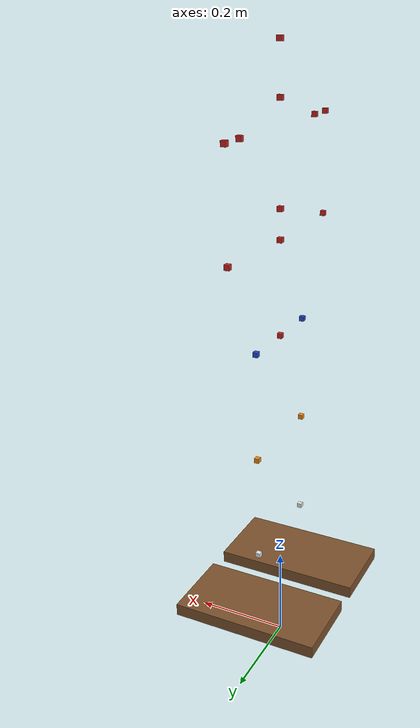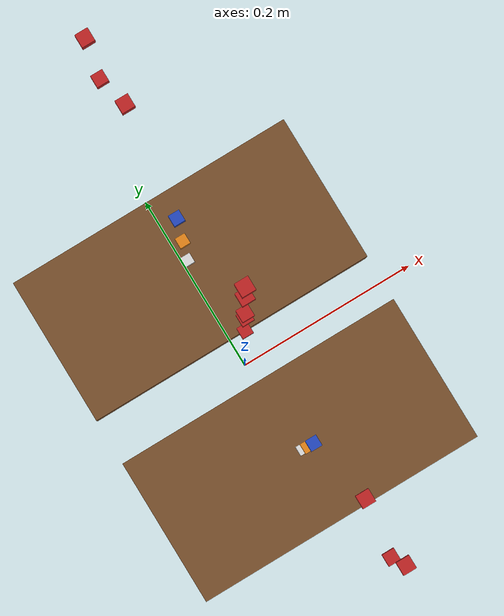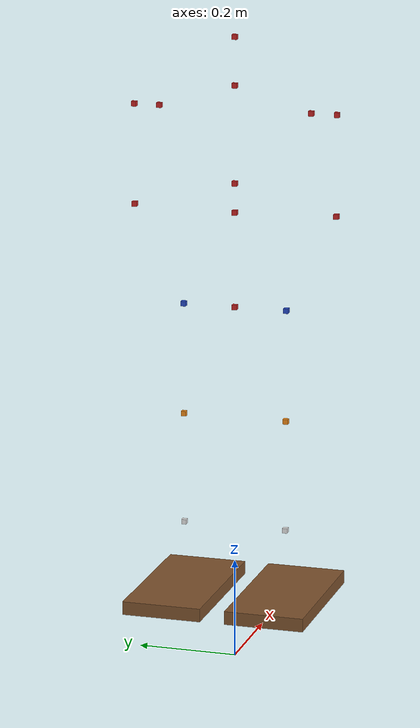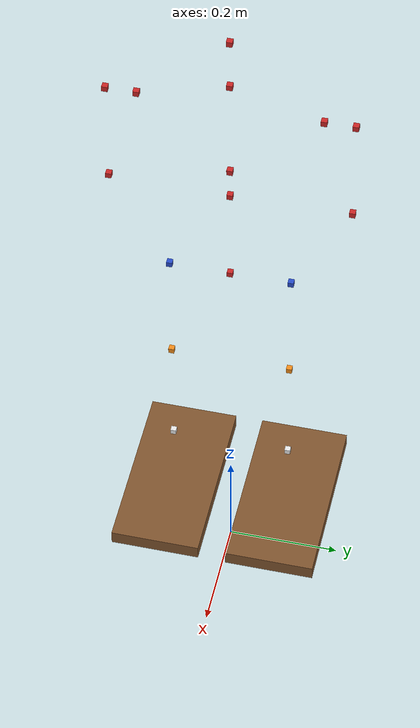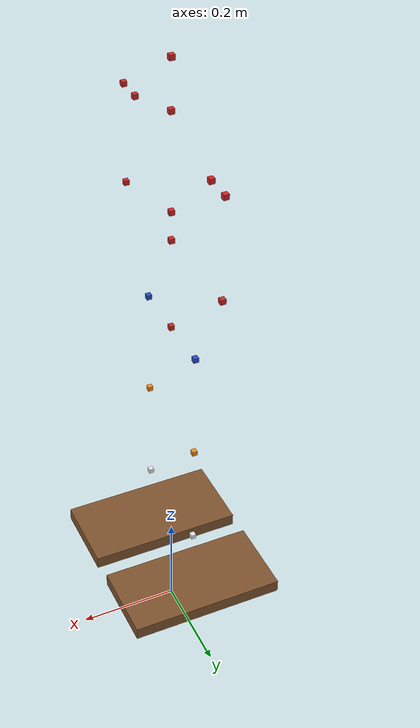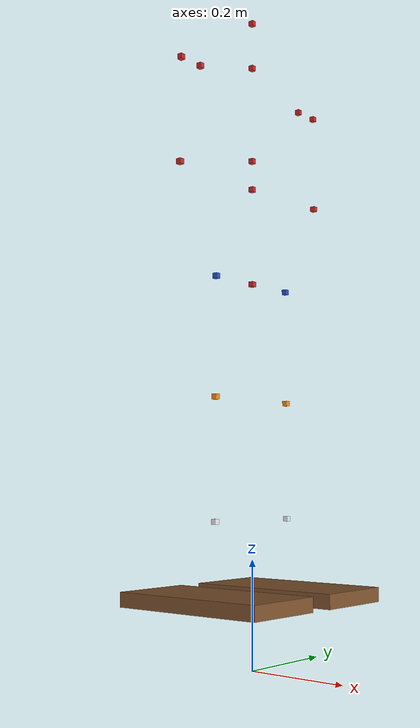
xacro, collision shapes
<?xml version="1.0"?>

<robot name="soccer_simulation" xmlns:xacro="http://www.ros.org/wiki/xacro">

  <xacro:property name="pi" value="3.141592654" />
   <!-- Import all Gazebo-customization elements, including Gazebo colors -->
  <xacro:include filename="$(find diana_description)/urdf/soccer_gazebo.gazebo" />
  <xacro:include filename="$(find diana_description)/urdf/materials.xacro" />

  <!-- Used for fixing robot -->
  <link name="world">
  </link>

  <joint name="world_fixed" type="fixed">
    <origin xyz="0 0 0" rpy="0 0 0"/>
    <parent link="world"/>
    <child link="base"/>
  </joint>

  <link name="base">
  </link>

  <joint name="base_fixed" type="fixed">
    <origin xyz="0 0 0.723" rpy="0 0 0"/>
    <parent link="base"/>
    <child link="pelvis"/>
  </joint>

  <!-- pelvis -->

  <link name="pelvis">
    <collision>
      <origin xyz="0 0 0" rpy="0 0 0"/>
      <geometry>
        <box size="0.01 0.01 0.01" />
      </geometry>
    </collision>

    <visual>
        <origin xyz="0 0 0" rpy="0 0 0"/>
        <geometry>
          <mesh filename="package://diana_description/meshes/stl_robot_pelvis_main.stl" scale="0.001 0.001 0.001"/>
        </geometry>
        <material name="red"/>
    </visual>

    <inertial>
      <origin xyz="0 0 0" rpy="0 0 0"/>
      <mass value="1"/>
      <inertia ixx="1.0" ixy="0.0" ixz="0.0" iyy="1.0" iyz="0.0" izz="1.0" />
    </inertial>
  </link>

  <joint name="imu_fixed" type="fixed">
    <parent link="pelvis"/>
    <child link="imu_link"/>
    <origin xyz="0.0 0.0 0" rpy="0 0 0"/>
  </joint>

  <link name="imu_link">
    <inertial>
      <origin xyz="0 0 0" rpy="0 0 0"/>
      <mass value="1"/>
      <inertia ixx="1.0" ixy="0.0" ixz="0.0" iyy="1.0" iyz="0.0" izz="1.0" />
    </inertial>
  </link>

  <!-- chest -->
  <joint name="waist_fixed" type="fixed">
    <parent link="pelvis"/>
    <child link="waist_fixed_link"/>
    <origin xyz="0 0 0" rpy="0 0 0"/>
  </joint>

  <link name="waist_fixed_link">
    <collision>
      <origin xyz="0 0 0" rpy="0 0 0"/>
      <geometry>
        <box size="0.01 0.01 0.01" />
      </geometry>
    </collision>

    <visual>
        <origin xyz="0 0 0" rpy="0 0 0"/>
        <geometry>
          <mesh filename="package://diana_description/meshes/stl_robot_chest_1.stl" scale="0.001 0.001 0.001"/>
        </geometry>
        <material name="red"/>
    </visual>

    <inertial>
      <origin xyz="0 0 0" rpy="0 0 0"/>
      <mass value="1"/>
      <inertia ixx="1.0" ixy="0.0" ixz="0.0" iyy="1.0" iyz="0.0" izz="1.0" />
    </inertial>
  </link>

  <joint name="waist_roll" type="revolute">
    <parent link="waist_fixed_link"/>
    <child link="waist_roll_link"/>
    <origin xyz="0 0 0.19" rpy="0 0 0"/>
    <axis xyz="-1 0 0"/>
    <limit velocity="6.5" effort="1000" lower="${-pi/2}" upper="${pi}" />
    <dynamics damping = "0.7"/>
  </joint>

  <transmission name="waist_roll_tran">
     <type>transmission_interface/SimpleTransmission</type>
     <joint name="waist_roll">
       <hardwareInterface>EffortJointInterface</hardwareInterface>
     </joint>
     <actuator name="waist_roll_motor">
       <hardwareInterface>EffortJointInterface</hardwareInterface>
       <mechanicalReduction>1</mechanicalReduction>
     </actuator>
  </transmission>

  <link name="waist_roll_link">
    <collision>
      <origin xyz="0 0 0" rpy="0 0 0"/>
      <geometry>
        <box size="0.01 0.01 0.01" />
      </geometry>
    </collision>

    <visual>
        <origin xyz="0 0 0" rpy="0 0 0"/>
        <geometry>
          <mesh filename="package://diana_description/meshes/stl_robot_chest_2.stl" scale="0.001 0.001 0.001"/>
        </geometry>
        <material name="red"/>
    </visual>

    <inertial>
      <origin xyz="0 0 0" rpy="0 0 0"/>
      <mass value="1"/>
      <inertia ixx="1.0" ixy="0.0" ixz="0.0" iyy="1.0" iyz="0.0" izz="1.0" />
    </inertial>
  </link>

  <joint name="waist_yaw" type="revolute">
    <parent link="waist_roll_link"/>
    <child link="waist_yaw_link"/>
    <origin xyz="0 0 0.058" rpy="0 0 0"/>
    <axis xyz="0 0 -1"/>
    <limit velocity="6.5" effort="1000" lower="${-pi/2}" upper="${pi}" />
    <dynamics damping = "0.7"/>
   </joint>

  <transmission name="waist_yaw_tran">
     <type>transmission_interface/SimpleTransmission</type>
     <joint name="waist_yaw">
       <hardwareInterface>EffortJointInterface</hardwareInterface>
     </joint>
     <actuator name="waist_yaw_motor">
       <hardwareInterface>EffortJointInterface</hardwareInterface>
       <mechanicalReduction>1</mechanicalReduction>
     </actuator>
  </transmission>

  <link name="waist_yaw_link">
    <collision>
      <origin xyz="0 0 0" rpy="0 0 0"/>
      <geometry>
        <box size="0.01 0.01 0.01" />
      </geometry>
    </collision>

    <visual>
        <origin xyz="0 0 0" rpy="0 0 0"/>
        <geometry>
          <mesh filename="package://diana_description/meshes/stl_robot_chest_3.stl" scale="0.001 0.001 0.001"/>
        </geometry>
        <material name="red"/>
    </visual>

    <inertial>
      <origin xyz="0 0 0" rpy="0 0 0"/>
      <mass value="1"/>
      <inertia ixx="1.0" ixy="0.0" ixz="0.0" iyy="1.0" iyz="0.0" izz="1.0" />
    </inertial>
  </link>

  <!-- head -->
  <joint name="head_yaw" type="revolute">
    <parent link="waist_yaw_link"/>
    <child link="head_yaw_link"/>
    <origin xyz="0 0 0.1935" rpy="0 0 0"/>
    <axis xyz="0 0 -1"/>
    <limit velocity="6.5" effort="1000" lower="${-pi/2}" upper="${pi/2}" />
    <dynamics damping = "0.7"/>
  </joint>

  <transmission name="head_yaw_tran">
     <type>transmission_interface/SimpleTransmission</type>
     <joint name="head_yaw">
       <hardwareInterface>EffortJointInterface</hardwareInterface>
     </joint>
     <actuator name="head_yaw_motor">
       <hardwareInterface>EffortJointInterface</hardwareInterface>
       <mechanicalReduction>1</mechanicalReduction>
     </actuator>
  </transmission>

  <link name="head_yaw_link">
    <collision>
      <origin xyz="0 0 0" rpy="0 0 0"/>
      <geometry>
        <box size="0.01 0.01 0.01" />
      </geometry>
    </collision>

    <visual>
        <origin xyz="0 0 0" rpy="0 0 0"/>
        <geometry>
          <mesh filename="package://diana_description/meshes/stl_robot_head1.stl" scale="0.001 0.001 0.001"/>
        </geometry>
        <material name="red"/>
    </visual>

    <inertial>
      <origin xyz="0 0 0" rpy="0 0 0"/>
      <mass value="1"/>
      <inertia ixx="1.0" ixy="0.0" ixz="0.0" iyy="1.0" iyz="0.0" izz="1.0" />
    </inertial>
  </link>

  <joint name="head_pitch" type="revolute">
    <parent link="head_yaw_link"/>
    <child link="head_pitch_link"/>
    <origin xyz="0 0 0.095" rpy="0 0 0"/>
    <axis xyz="0 -1 0"/>
    <limit velocity="6.5" effort="1000" lower="${-pi/2}" upper="${pi/2}" />
    <dynamics damping = "0.7"/>
  </joint>

  <transmission name="head_pitch_tran">
     <type>transmission_interface/SimpleTransmission</type>
     <joint name="head_pitch">
       <hardwareInterface>EffortJointInterface</hardwareInterface>
     </joint>
     <actuator name="head_pitch_motor">
       <hardwareInterface>EffortJointInterface</hardwareInterface>
       <mechanicalReduction>1</mechanicalReduction>
     </actuator>
   </transmission>

  <link name="head_pitch_link">
    <collision>
      <origin xyz="0 0 0" rpy="0 0 0"/>
      <geometry>
        <box size="0.01 0.01 0.01" />
      </geometry>
    </collision>

    <visual>
        <origin xyz="0 0 0" rpy="0 0 0"/>
        <geometry>
          <mesh filename="package://diana_description/meshes/stl_robot_head2.stl" scale="0.001 0.001 0.001"/>
        </geometry>
        <material name="red"/>
    </visual>

    <inertial>
      <origin xyz="0 0 0" rpy="0 0 0"/>
      <mass value="1"/>
      <inertia ixx="1.0" ixy="0.0" ixz="0.0" iyy="1.0" iyz="0.0" izz="1.0" />
    </inertial>
  </link>

  <joint name="head_roll" type="revolute">
    <parent link="head_pitch_link"/>
    <child link="head_roll_link"/>
    <origin xyz="0 0 0" rpy="0 0 0"/>
    <axis xyz="-1 0 0"/>
    <limit velocity="6.5" effort="1000" lower="${-pi/2}" upper="${pi/2}" />
    <dynamics damping = "0.7"/>
  </joint>

  <transmission name="head_roll_tran">
     <type>transmission_interface/SimpleTransmission</type>
     <joint name="head_roll">
       <hardwareInterface>EffortJointInterface</hardwareInterface>
     </joint>
     <actuator name="head_roll_motor">
       <hardwareInterface>EffortJointInterface</hardwareInterface>
       <mechanicalReduction>1</mechanicalReduction>
     </actuator>
  </transmission>

  <link name="head_roll_link">
    <collision>
      <origin xyz="0 0 0" rpy="0 0 0"/>
      <geometry>
        <box size="0.01 0.01 0.01" />
      </geometry>
    </collision>

    <visual>
        <origin xyz="0 0 0" rpy="0 0 0"/>
        <geometry>
          <mesh filename="package://diana_description/meshes/stl_robot_head3.stl" scale="0.001 0.001 0.001"/>
        </geometry>
        <material name="red"/>
    </visual>

    <inertial>
      <origin xyz="0 0 0" rpy="0 0 0"/>
      <mass value="1"/>
      <inertia ixx="1.0" ixy="0.0" ixz="0.0" iyy="1.0" iyz="0.0" izz="1.0" />
    </inertial>
  </link>

  <!-- left Arm -->
  <joint name="l_shoulder_pitch" type="revolute">
    <parent link="waist_yaw_link"/>
    <child link="l_shoulder_pitch_link"/>
    <origin xyz="0 0.1535 0.147" rpy="0 0 0"/>
    <axis xyz="0 -1 0"/>
    <limit velocity="6.5" effort="1000" lower="${-pi/2}" upper="${pi}" />
    <dynamics damping = "0.7"/>
  </joint>

  <transmission name="l_shoulder_pitch_tran">
     <type>transmission_interface/SimpleTransmission</type>
     <joint name="l_shoulder_pitch">
       <hardwareInterface>EffortJointInterface</hardwareInterface>
     </joint>
     <actuator name="l_shoulder_pitch_motor">
       <hardwareInterface>EffortJointInterface</hardwareInterface>
       <mechanicalReduction>1</mechanicalReduction>
     </actuator>
  </transmission>

  <link name="l_shoulder_pitch_link">
    <collision>
      <origin xyz="0 0 0" rpy="0 0 0"/>
      <geometry>
        <box size="0.01 0.01 0.01" />
      </geometry>
    </collision>

    <visual>
        <origin xyz="0 0 0" rpy="0 0 0"/>
        <geometry>
          <mesh filename="package://diana_description/meshes/stl_robot_arm_left1.stl" scale="0.001 0.001 0.001"/>
        </geometry>
        <material name="red"/>
    </visual>

    <inertial>
      <origin xyz="0 0 0" rpy="0 0 0"/>
      <mass value="1"/>
      <inertia ixx="1.0" ixy="0.0" ixz="0.0" iyy="1.0" iyz="0.0" izz="1.0" />
    </inertial>
  </link>

  <joint name="l_shoulder_roll" type="revolute">
    <parent link="l_shoulder_pitch_link"/>
    <child link="l_shoulder_roll_link"/>
    <origin xyz="0 0.0515 0" rpy="-1.570796327 0 0"/>
    <axis xyz="-1 0 0"/>
    <limit velocity="6.5" effort="1000" lower="${-pi/2}" upper="${pi}" />
    <dynamics damping = "0.7"/>
  </joint>

  <transmission name="l_shoulder_roll_tran">
     <type>transmission_interface/SimpleTransmission</type>
     <joint name="l_shoulder_roll">
       <hardwareInterface>EffortJointInterface</hardwareInterface>
     </joint>
     <actuator name="l_shoulder_roll_motor">
       <hardwareInterface>EffortJointInterface</hardwareInterface>
       <mechanicalReduction>1</mechanicalReduction>
     </actuator>
  </transmission>

  <link name="l_shoulder_roll_link">
    <collision>
      <origin xyz="0 0 0" rpy="0 0 0"/>
      <geometry>
        <box size="0.01 0.01 0.01" />
      </geometry>
    </collision>

    <visual>
        <origin xyz="0 0 0" rpy="0 0 0"/>
        <geometry>
          <mesh filename="package://diana_description/meshes/stl_robot_arm_left2.stl" scale="0.001 0.001 0.001"/>
        </geometry>
        <material name="red"/>
    </visual>

    <inertial>
      <origin xyz="0 0 0" rpy="0 0 0"/>
      <mass value="1"/>
      <inertia ixx="1.0" ixy="0.0" ixz="0.0" iyy="1.0" iyz="0.0" izz="1.0" />
    </inertial>
  </link>

  <joint name="l_elbow_pitch" type="revolute">
    <parent link="l_shoulder_roll_link"/>
    <child link="l_elbow_pitch_link"/>
    <origin xyz="0 0.2 0" rpy="0 0 0"/>
    <axis xyz="0 0 1"/>
    <limit velocity="6.5" effort="1000" lower="${-pi/2}" upper="${pi/2}" />
    <dynamics damping = "0.7"/>
  </joint>

  <transmission name="l_elbow_pitch_tran">
     <type>transmission_interface/SimpleTransmission</type>
     <joint name="l_elbow_pitch">
       <hardwareInterface>EffortJointInterface</hardwareInterface>
     </joint>
     <actuator name="l_elbow_pitch_motor">
       <hardwareInterface>EffortJointInterface</hardwareInterface>
       <mechanicalReduction>1</mechanicalReduction>
     </actuator>
  </transmission>

  <link name="l_elbow_pitch_link">
    <collision>
      <origin xyz="0 0 0" rpy="0 0 0"/>
      <geometry>
        <box size="0.01 0.01 0.01" />
      </geometry>
    </collision>

    <visual>
        <origin xyz="0 0 0" rpy="0 0 0"/>
        <geometry>
          <mesh filename="package://diana_description/meshes/stl_robot_arm_left3.stl" scale="0.001 0.001 0.001"/>
        </geometry>
        <material name="red"/>
    </visual>

    <inertial>
      <origin xyz="0 0 0" rpy="0 0 0"/>
      <mass value="1"/>
      <inertia ixx="1.0" ixy="0.0" ixz="0.0" iyy="1.0" iyz="0.0" izz="1.0" />
    </inertial>
  </link>

  <!-- right Arm -->
  <joint name="r_shoulder_pitch" type="revolute">
    <parent link="waist_yaw_link"/>
    <child link="r_shoulder_pitch_link"/>
    <origin xyz="0 -0.1535 0.147" rpy="0 0 0"/>
    <axis xyz="0 1 0"/>
    <limit velocity="6.5" effort="1000" lower="${-pi/2}" upper="${pi}" />
    <dynamics damping = "0.7"/>
  </joint>

  <transmission name="r_shoulder_pitch_tran">
     <type>transmission_interface/SimpleTransmission</type>
     <joint name="r_shoulder_pitch">
       <hardwareInterface>EffortJointInterface</hardwareInterface>
     </joint>
     <actuator name="r_shoulder_pitch_motor">
       <hardwareInterface>EffortJointInterface</hardwareInterface>
       <mechanicalReduction>1</mechanicalReduction>
     </actuator>
  </transmission>

  <link name="r_shoulder_pitch_link">
    <collision>
      <origin xyz="0 0 0" rpy="0 0 0"/>
      <geometry>
        <box size="0.01 0.01 0.01" />
      </geometry>
    </collision>

    <visual>
        <origin xyz="0 0 0" rpy="0 0 0"/>
        <geometry>
          <mesh filename="package://diana_description/meshes/stl_robot_arm_right1.stl" scale="0.001 0.001 0.001"/>
        </geometry>
        <material name="red"/>
    </visual>

    <inertial>
      <origin xyz="0 0 0" rpy="0 0 0"/>
      <mass value="1"/>
      <inertia ixx="1.0" ixy="0.0" ixz="0.0" iyy="1.0" iyz="0.0" izz="1.0" />
    </inertial>
  </link>

  <joint name="r_shoulder_roll" type="revolute">
    <parent link="r_shoulder_pitch_link"/>
    <child link="r_shoulder_roll_link"/>
    <origin xyz="0 -0.0515 0" rpy="1.570796327 0 0"/>
    <axis xyz="-1 0 0"/>
    <limit velocity="6.5" effort="1000" lower="${-pi/2}" upper="${pi}" />
    <dynamics damping = "0.7"/>
  </joint>

  <transmission name="r_shoulder_roll_tran">
     <type>transmission_interface/SimpleTransmission</type>
     <joint name="r_shoulder_roll">
       <hardwareInterface>EffortJointInterface</hardwareInterface>
     </joint>
     <actuator name="r_shoulder_roll_motor">
       <hardwareInterface>EffortJointInterface</hardwareInterface>
       <mechanicalReduction>1</mechanicalReduction>
     </actuator>
  </transmission>

  <link name="r_shoulder_roll_link">
    <collision>
      <origin xyz="0 0 0" rpy="0 0 0"/>
      <geometry>
        <box size="0.01 0.01 0.01" />
      </geometry>
    </collision>

    <visual>
        <origin xyz="0 0 0" rpy="0 0 0"/>
        <geometry>
          <mesh filename="package://diana_description/meshes/stl_robot_arm_right2.stl" scale="0.001 0.001 0.001"/>
        </geometry>
        <material name="red"/>
    </visual>

    <inertial>
      <origin xyz="0 0 0" rpy="0 0 0"/>
      <mass value="1"/>
      <inertia ixx="1.0" ixy="0.0" ixz="0.0" iyy="1.0" iyz="0.0" izz="1.0" />
    </inertial>
  </link>

  <joint name="r_elbow_pitch" type="revolute">
    <parent link="r_shoulder_roll_link"/>
    <child link="r_elbow_pitch_link"/>
    <origin xyz="0 -0.2 0" rpy="0 0 0"/>
    <axis xyz="0 0 1"/>
    <limit velocity="6.5" effort="1000" lower="${-pi/2}" upper="${pi/2}" />
    <dynamics damping = "0.7"/>
  </joint>

  <transmission name="r_elbow_pitch_tran">
     <type>transmission_interface/SimpleTransmission</type>
     <joint name="r_elbow_pitch">
       <hardwareInterface>EffortJointInterface</hardwareInterface>
     </joint>
     <actuator name="r_elbow_pitch_motor">
       <hardwareInterface>EffortJointInterface</hardwareInterface>
       <mechanicalReduction>1</mechanicalReduction>
     </actuator>
  </transmission>

  <link name="r_elbow_pitch_link">
    <collision>
      <origin xyz="0 0 0" rpy="0 0 0"/>
      <geometry>
        <box size="0.01 0.01 0.01" />
      </geometry>
    </collision>

    <visual>
        <origin xyz="0 0 0" rpy="0 0 0"/>
        <geometry>
          <mesh filename="package://diana_description/meshes/stl_robot_arm_right3.stl" scale="0.001 0.001 0.001"/>
        </geometry>
        <material name="red"/>
    </visual>

    <inertial>
      <origin xyz="0 0 0" rpy="0 0 0"/>
      <mass value="1"/>
      <inertia ixx="1.0" ixy="0.0" ixz="0.0" iyy="1.0" iyz="0.0" izz="1.0" />
    </inertial>
  </link>

  <!-- left leg -->
  <joint name="l_hip_pitch" type="revolute">
    <parent link="pelvis"/>
    <child link="l_hip_pitch_link"/>
    <origin xyz="0 0.105 0" rpy="0 0 0"/>
    <axis xyz="0 -1 0"/>
    <limit velocity="6.5" effort="1000" lower="${-pi/2}" upper="${pi/2}" />
    <dynamics damping = "0.7"/>
  </joint>

  <transmission name="l_hip_pitch_tran">
     <type>transmission_interface/SimpleTransmission</type>
     <joint name="l_hip_pitch">
       <hardwareInterface>EffortJointInterface</hardwareInterface>
     </joint>
     <actuator name="l_hip_pitch_motor">
       <hardwareInterface>EffortJointInterface</hardwareInterface>
       <mechanicalReduction>1</mechanicalReduction>
     </actuator>
  </transmission>

  <link name="l_hip_pitch_link">
    <collision>
      <origin xyz="0 0 0" rpy="0 0 0"/>
      <geometry>
        <box size="0.01 0.01 0.01" />
      </geometry>
    </collision>

    <visual>
      <origin xyz="0 0 0" rpy="0 0 0"/>
      <geometry>
        <mesh filename="package://diana_description/meshes/stl_robot_pelvis_left1.stl" scale="0.001 0.001 0.001"/>
      </geometry>
      <material name="blue"/>
    </visual>

    <inertial>
      <origin xyz="0 0 0" rpy="0 0 0"/>
      <mass value="1"/>
      <inertia ixx="1.0" ixy="0.0" ixz="0.0" iyy="1.0" iyz="0.0" izz="1.0" />
    </inertial>
  </link>

  <joint name="l_hip_roll" type="revolute">
    <parent link="l_hip_pitch_link"/>
    <child link="l_hip_roll_link"/>
    <origin xyz="0 0 0" rpy="0 0 0"/>
    <axis xyz="1 0 0"/>
    <limit velocity="6.5" effort="1000" lower="${-pi/2}" upper="${pi}" />
    <dynamics damping = "0.7"/>
  </joint>

  <transmission name="l_hip_roll_tran">
     <type>transmission_interface/SimpleTransmission</type>
     <joint name="l_hip_roll">
       <hardwareInterface>EffortJointInterface</hardwareInterface>
     </joint>
     <actuator name="l_hip_roll_motor">
       <hardwareInterface>EffortJointInterface</hardwareInterface>
       <mechanicalReduction>1</mechanicalReduction>
     </actuator>
  </transmission>

  <link name="l_hip_roll_link">
    <collision>
      <origin xyz="0 0 0" rpy="0 0 0"/>
      <geometry>
        <box size="0.01 0.01 0.01" />
      </geometry>
    </collision>

    <visual>
      <origin xyz="0 0 0" rpy="0 0 0"/>
      <geometry>
        <mesh filename="package://diana_description/meshes/stl_robot_pelvis_left2.stl" scale="0.001 0.001 0.001"/>
      </geometry>
      <material name="green"/>
    </visual>

    <inertial>
      <origin xyz="0 0 0" rpy="0 0 0"/>
      <mass value="1"/>
      <inertia ixx="1.0" ixy="0.0" ixz="0.0" iyy="1.0" iyz="0.0" izz="1.0" />
    </inertial>
  </link>

  <joint name="l_hip_yaw" type="revolute">
    <parent link="l_hip_roll_link"/>
    <child link="l_hip_yaw_link"/>
    <origin xyz="0 0 0" rpy="0 0 0"/>
    <axis xyz="0 0 1"/>
    <limit velocity="6.5" effort="1000" lower="${-pi/2}" upper="${pi/2}" />
    <dynamics damping = "0.7"/>
  </joint>

  <transmission name="l_hip_yaw_tran">
     <type>transmission_interface/SimpleTransmission</type>
     <joint name="l_hip_yaw">
       <hardwareInterface>EffortJointInterface</hardwareInterface>
     </joint>
     <actuator name="l_hip_yaw_motor">
       <hardwareInterface>EffortJointInterface</hardwareInterface>
       <mechanicalReduction>1</mechanicalReduction>
     </actuator>
  </transmission>

  <link name="l_hip_yaw_link">
    <collision>
      <origin xyz="0 0 0" rpy="0 0 0"/>
      <geometry>
        <box size="0.01 0.01 0.01" />
      </geometry>
    </collision>

    <visual>
      <origin xyz="0 0 0" rpy="0 0 0"/>
      <geometry>
        <mesh filename="package://diana_description/meshes/stl_robot_leg_left1.stl" scale="0.001 0.001 0.001"/>
      </geometry>
      <material name="grey"/>
    </visual>

    <inertial>
      <origin xyz="0 0 0" rpy="0 0 0"/>
      <mass value="1"/>
      <inertia ixx="1.0" ixy="0.0" ixz="0.0" iyy="1.0" iyz="0.0" izz="1.0" />
    </inertial>
  </link>

  <joint name="l_knee_pitch" type="revolute">
    <parent link="l_hip_yaw_link"/>
    <child link="l_knee_pitch_link"/>
    <origin xyz="0 0 -0.225" rpy="0 0 0"/>
    <axis xyz="0 1 0"/>
    <limit velocity="6.5" effort="1000" lower="${-pi}" upper="${pi/2}" />
    <dynamics damping = "0.7"/>
  </joint>

  <transmission name="l_knee_pitch_tran">
     <type>transmission_interface/SimpleTransmission</type>
     <joint name="l_knee_pitch">
       <hardwareInterface>EffortJointInterface</hardwareInterface>
     </joint>
     <actuator name="l_knee_pitch_motor">
       <hardwareInterface>EffortJointInterface</hardwareInterface>
       <mechanicalReduction>1</mechanicalReduction>
     </actuator>
  </transmission>

  <link name="l_knee_pitch_link">
    <collision>
      <origin xyz="0 0 0" rpy="0 0 0"/>
      <geometry>
        <box size="0.01 0.01 0.01" />
      </geometry>
    </collision>

    <visual>
      <origin xyz="0 0 0" rpy="0 0 0"/>
      <geometry>
        <mesh filename="package://diana_description/meshes/stl_robot_leg_left2.stl" scale="0.001 0.001 0.001"/>
      </geometry>
      <material name="orange"/>
    </visual>

    <inertial>
      <origin xyz="0 0 -0.225" rpy="0 0 0"/>
      <mass value="1"/>
      <inertia ixx="1.0" ixy="0.0" ixz="0.0" iyy="1.0" iyz="0.0" izz="1.0" />
    </inertial>
  </link>

  <joint name="l_ankle_pitch" type="revolute">
    <parent link="l_knee_pitch_link"/>
    <child link="l_ankle_pitch_link"/>
    <origin xyz="0 0 -0.225" rpy="0 0 0"/>
    <axis xyz="0 -1 0"/>
    <limit velocity="6.5" effort="1000" lower="${-pi/2}" upper="${pi}" />
    <dynamics damping = "0.7"/>
  </joint>

  <transmission name="l_ankle_pitch_tran">
     <type>transmission_interface/SimpleTransmission</type>
     <joint name="l_ankle_pitch">
       <hardwareInterface>EffortJointInterface</hardwareInterface>
     </joint>
     <actuator name="l_ankle_pitch_motor">
       <hardwareInterface>EffortJointInterface</hardwareInterface>
       <mechanicalReduction>1</mechanicalReduction>
     </actuator>
  </transmission>

  <link name="l_ankle_pitch_link">
    <collision>
      <origin xyz="0 0 0" rpy="0 0 0"/>
      <geometry>
        <box size="0.01 0.01 0.01" />
      </geometry>
    </collision>

    <visual>
      <origin xyz="0 0 0" rpy="0 0 0"/>
      <geometry>
        <mesh filename="package://diana_description/meshes/stl_robot_ank_left1.stl" scale="0.001 0.001 0.001"/>
      </geometry>
      <material name="white"/>
    </visual>

    <inertial>
      <origin xyz="0 0 0" rpy="0 0 0"/>
      <mass value="1"/>
      <inertia ixx="1.0" ixy="0.0" ixz="0.0" iyy="1.0" iyz="0.0" izz="1.0" />
    </inertial>
  </link>

  <joint name="l_ankle_roll" type="revolute">
    <parent link="l_ankle_pitch_link"/>
    <child link="l_ankle_roll_link"/>
    <origin xyz="0 0 0" rpy="0 0 0"/>
    <axis xyz="1 0 0"/>
    <limit velocity="6.5" effort="1000" lower="${-pi/2}" upper="${pi/2}" />
    <dynamics damping = "0.7"/>
  </joint>

  <transmission name="l_ankle_roll_tran">
     <type>transmission_interface/SimpleTransmission</type>
     <joint name="l_ankle_roll">
       <hardwareInterface>EffortJointInterface</hardwareInterface>
     </joint>
     <actuator name="l_ankle_roll_motor">
       <hardwareInterface>EffortJointInterface</hardwareInterface>
       <mechanicalReduction>1</mechanicalReduction>
     </actuator>
  </transmission>

  <link name="l_ankle_roll_link">
    <collision>
      <origin xyz="0 0 0" rpy="0 0 0"/>
      <geometry>
        <box size="0.01 0.01 0.01" />
      </geometry>
    </collision>

    <visual>
      <origin xyz="0 0 0" rpy="0 0 0"/>
      <geometry>
        <mesh filename="package://diana_description/meshes/stl_robot_ank_left2.stl" scale="0.001 0.001 0.001"/>
      </geometry>
      <material name="brown"/>
    </visual>

    <inertial>
      <origin xyz="0 0 0" rpy="0 0 0"/>
      <mass value="1"/>
      <inertia ixx="1.0" ixy="0.0" ixz="0.0" iyy="1.0" iyz="0.0" izz="1.0" />
    </inertial>
  </link>

  <joint name="l_last" type="fixed">
    <parent link="l_ankle_roll_link"/>
    <child link="l_foot_link"/>
    <origin xyz="0 0 -0.135" rpy="0 0 0"/>
  </joint>

  <link name="l_foot_link">
    <collision>
      <origin xyz="0 0 -0.005" rpy="0 0 0"/>
      <geometry>
        <box size="0.315 0.160 0.027" />
      </geometry>
    </collision>

    <visual>
      <origin xyz="0 0 0" rpy="0 0 0"/>
      <geometry>
        <mesh filename="package://diana_description/meshes/stl_robot_foot.stl" scale="0.001 0.001 0.001"/>
      </geometry>
      <material name="brown"/>
    </visual>

    <inertial>
      <origin xyz="0 0 0" rpy="0 0 0"/>
      <mass value="1"/>
      <inertia ixx="1.0" ixy="0.0" ixz="0.0" iyy="1.0" iyz="0.0" izz="1.0" />
    </inertial>
  </link>

  <!-- right leg -->
  <joint name="r_hip_pitch" type="revolute">
    <parent link="pelvis"/>
    <child link="r_hip_pitch_link"/>
    <origin xyz="0 -0.105 0" rpy="0 0 0"/>
    <axis xyz="0 1 0"/>
    <limit velocity="6.5" effort="1000" lower="${-pi/2}" upper="${pi}" />
    <dynamics damping = "0.7"/>
  </joint>

  <transmission name="r_hip_pitch_tran">
     <type>transmission_interface/SimpleTransmission</type>
     <joint name="r_hip_pitch">
       <hardwareInterface>EffortJointInterface</hardwareInterface>
     </joint>
     <actuator name="r_hip_pitch_motor">
       <hardwareInterface>EffortJointInterface</hardwareInterface>
       <mechanicalReduction>1</mechanicalReduction>
     </actuator>
  </transmission>

  <link name="r_hip_pitch_link">
    <collision>
      <origin xyz="0 0 0" rpy="0 0 0"/>
      <geometry>
        <box size="0.01 0.01 0.01" />
      </geometry>
    </collision>

    <visual>
      <origin xyz="0 0 0" rpy="0 0 0"/>
      <geometry>
        <mesh filename="package://diana_description/meshes/stl_robot_pelvis_right1.stl" scale="0.001 0.001 0.001"/>
      </geometry>
      <material name="blue"/>
    </visual>

    <inertial>
      <origin xyz="0 0 0" rpy="0 0 0"/>
      <mass value="1"/>
      <inertia ixx="1.0" ixy="0.0" ixz="0.0" iyy="1.0" iyz="0.0" izz="1.0" />
    </inertial>
  </link>

  <joint name="r_hip_roll" type="revolute">
    <parent link="r_hip_pitch_link"/>
    <child link="r_hip_roll_link"/>
    <origin xyz="0 0 0" rpy="0 0 0"/>
    <axis xyz="1 0 0"/>
    <limit velocity="6.5" effort="1000" lower="${-pi}" upper="${pi/2}" />
    <dynamics damping = "0.7"/>
  </joint>

  <transmission name="r_hip_roll_tran">
     <type>transmission_interface/SimpleTransmission</type>
     <joint name="r_hip_roll">
       <hardwareInterface>EffortJointInterface</hardwareInterface>
     </joint>
     <actuator name="r_hip_roll_motor">
       <hardwareInterface>EffortJointInterface</hardwareInterface>
       <mechanicalReduction>1</mechanicalReduction>
     </actuator>
  </transmission>

  <link name="r_hip_roll_link">
    <collision>
      <origin xyz="0 0 0" rpy="0 0 0"/>
      <geometry>
        <box size="0.01 0.01 0.01" />
      </geometry>
    </collision>

    <visual>
      <origin xyz="0 0 0" rpy="0 0 0"/>
      <geometry>
        <mesh filename="package://diana_description/meshes/stl_robot_pelvis_right2.stl" scale="0.001 0.001 0.001"/>
      </geometry>
      <material name="green"/>
    </visual>

    <inertial>
      <origin xyz="0 0 0" rpy="0 0 0"/>
      <mass value="1"/>
      <inertia ixx="1.0" ixy="0.0" ixz="0.0" iyy="1.0" iyz="0.0" izz="1.0" />
    </inertial>
  </link>

  <joint name="r_hip_yaw" type="revolute">
    <parent link="r_hip_roll_link"/>
    <child link="r_hip_yaw_link"/>
    <origin xyz="0 0 0" rpy="0 0 0"/>
    <axis xyz="0 0 1"/>
    <limit velocity="6.5" effort="1000" lower="${-pi/2}" upper="${pi/2}" />
    <dynamics damping = "0.7"/>
  </joint>

  <transmission name="r_hip_yaw_tran">
     <type>transmission_interface/SimpleTransmission</type>
     <joint name="r_hip_yaw">
       <hardwareInterface>EffortJointInterface</hardwareInterface>
     </joint>
     <actuator name="r_hip_yaw_motor">
       <hardwareInterface>EffortJointInterface</hardwareInterface>
       <mechanicalReduction>1</mechanicalReduction>
     </actuator>
  </transmission>

  <link name="r_hip_yaw_link">
   <collision>
      <origin xyz="0 0 0" rpy="0 0 0"/>
      <geometry>
        <box size="0.01 0.01 0.01" />
      </geometry>
    </collision>

    <visual>
      <origin xyz="0 0 0" rpy="0 0 0"/>
      <geometry>
        <mesh filename="package://diana_description/meshes/stl_robot_leg_right1.stl" scale="0.001 0.001 0.001"/>
      </geometry>
      <material name="grey"/>
    </visual>

    <inertial>
      <origin xyz="0 0 0" rpy="0 0 0"/>
      <mass value="1"/>
      <inertia ixx="1.0" ixy="0.0" ixz="0.0" iyy="1.0" iyz="0.0" izz="1.0" />
    </inertial>
  </link>

  <joint name="r_knee_pitch" type="revolute">
    <parent link="r_hip_yaw_link"/>
    <child link="r_knee_pitch_link"/>
    <origin xyz="0 0 -0.225" rpy="0 0 0"/>
    <axis xyz="0 -1 0"/>
    <limit velocity="6.5" effort="1000" lower="${-pi/2}" upper="${pi}" />
    <dynamics damping = "0.7"/>
  </joint>

  <transmission name="r_knee_pitch_tran">
     <type>transmission_interface/SimpleTransmission</type>
     <joint name="r_knee_pitch">
       <hardwareInterface>EffortJointInterface</hardwareInterface>
     </joint>
     <actuator name="r_knee_pitch_motor">
       <hardwareInterface>EffortJointInterface</hardwareInterface>
       <mechanicalReduction>1</mechanicalReduction>
     </actuator>
  </transmission>

  <link name="r_knee_pitch_link">
    <collision>
      <origin xyz="0 0 0" rpy="0 0 0"/>
      <geometry>
        <box size="0.01 0.01 0.01" />
      </geometry>
    </collision>

    <visual>
      <origin xyz="0 0 0" rpy="0 0 0"/>
      <geometry>
        <mesh filename="package://diana_description/meshes/stl_robot_leg_right2.stl" scale="0.001 0.001 0.001"/>
      </geometry>
      <material name="orange"/>
    </visual>

    <inertial>
      <origin xyz="0 0 0" rpy="0 0 0"/>
      <mass value="1"/>
      <inertia ixx="1.0" ixy="0.0" ixz="0.0" iyy="1.0" iyz="0.0" izz="1.0" />
    </inertial>
  </link>

  <joint name="r_ankle_pitch" type="revolute">
    <parent link="r_knee_pitch_link"/>
    <child link="r_ankle_pitch_link"/>
    <origin xyz="0 0 -0.225" rpy="0 0 0"/>
    <axis xyz="0 1 0"/>
    <limit velocity="6.5" effort="1000" lower="${-pi/2}" upper="${pi/2}" />
    <dynamics damping = "0.7"/>
  </joint>

  <transmission name="r_ankle_pitch_tran">
     <type>transmission_interface/SimpleTransmission</type>
     <joint name="r_ankle_pitch">
       <hardwareInterface>EffortJointInterface</hardwareInterface>
     </joint>
     <actuator name="r_ankle_pitch_motor">
       <hardwareInterface>EffortJointInterface</hardwareInterface>
       <mechanicalReduction>1</mechanicalReduction>
     </actuator>
  </transmission>

  <link name="r_ankle_pitch_link">
    <collision>
      <origin xyz="0 0 0" rpy="0 0 0"/>
      <geometry>
        <box size="0.01 0.01 0.01" />
      </geometry>
    </collision>

    <visual>
      <origin xyz="0 0 0" rpy="0 0 0"/>
      <geometry>
        <mesh filename="package://diana_description/meshes/stl_robot_ank_right1.stl" scale="0.001 0.001 0.001"/>
      </geometry>
      <material name="white"/>
    </visual>

    <inertial>
      <origin xyz="0 0 0" rpy="0 0 0"/>
      <mass value="1"/>
      <inertia ixx="1.0" ixy="0.0" ixz="0.0" iyy="1.0" iyz="0.0" izz="1.0" />
    </inertial>
  </link>

  <joint name="r_ankle_roll" type="revolute">
    <parent link="r_ankle_pitch_link"/>
    <child link="r_ankle_roll_link"/>
    <origin xyz="0 0 0" rpy="0 0 0"/>
    <axis xyz="1 0 0"/>
    <limit velocity="6.5" effort="1000" lower="${-pi/2}" upper="${pi/2}" />
    <dynamics damping = "0.7"/>
  </joint>

  <transmission name="r_ankle_roll_tran">
     <type>transmission_interface/SimpleTransmission</type>
     <joint name="r_ankle_roll">
       <hardwareInterface>EffortJointInterface</hardwareInterface>
     </joint>
     <actuator name="r_ankle_roll_motor">
       <hardwareInterface>EffortJointInterface</hardwareInterface>
       <mechanicalReduction>1</mechanicalReduction>
     </actuator>
  </transmission>

  <link name="r_ankle_roll_link">
    <collision>
      <origin xyz="0 0 0" rpy="0 0 0"/>
      <geometry>
        <box size="0.01 0.01 0.01" />
      </geometry>
    </collision>

    <visual>
      <origin xyz="0 0 0" rpy="0 0 0"/>
      <geometry>
        <mesh filename="package://diana_description/meshes/stl_robot_ank_right2.stl" scale="0.001 0.001 0.001"/>
      </geometry>
      <material name="brown"/>
    </visual>

    <inertial>
      <origin xyz="0 0 0" rpy="0 0 0"/>
      <mass value="1"/>
      <inertia ixx="1.0" ixy="0.0" ixz="0.0" iyy="1.0" iyz="0.0" izz="1.0" />
    </inertial>
  </link>

  <joint name="r_last" type="fixed">
    <parent link="r_ankle_roll_link"/>
    <child link="r_foot_link"/>
    <origin xyz="0 0 -0.135" rpy="0 0 0"/>
  </joint>

  <link name="r_foot_link">
    <collision>
      <origin xyz="0 0 -0.005" rpy="0 0 0"/>
      <geometry>
        <box size="0.315 0.160 0.027" />
      </geometry>
    </collision>

    <visual>
      <origin xyz="0 0 0" rpy="0 0 0"/>
      <geometry>
        <mesh filename="package://diana_description/meshes/stl_robot_foot.stl" scale="0.001 0.001 0.001"/>
      </geometry>
      <material name="brown"/>
    </visual>

    <inertial>
      <origin xyz="0 0 0" rpy="0 0 0"/>
      <mass value="1"/>
      <inertia ixx="1.0" ixy="0.0" ixz="0.0" iyy="1.0" iyz="0.0" izz="1.0" />
    </inertial>
  </link>

</robot>
